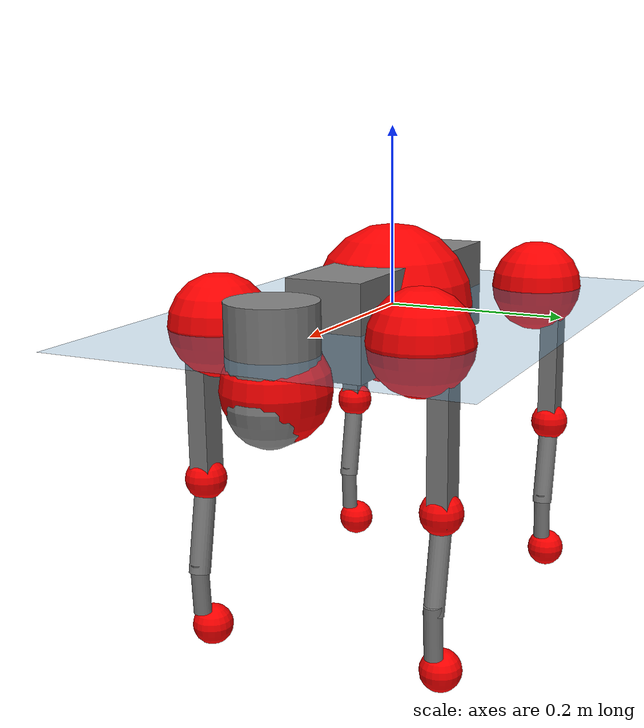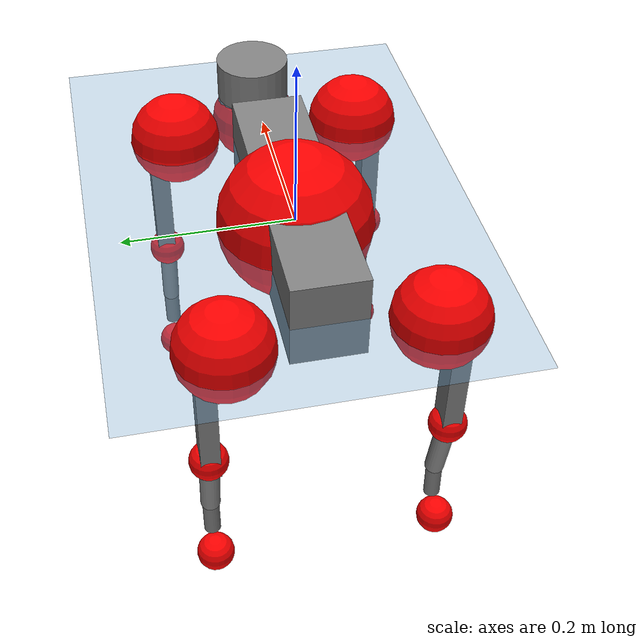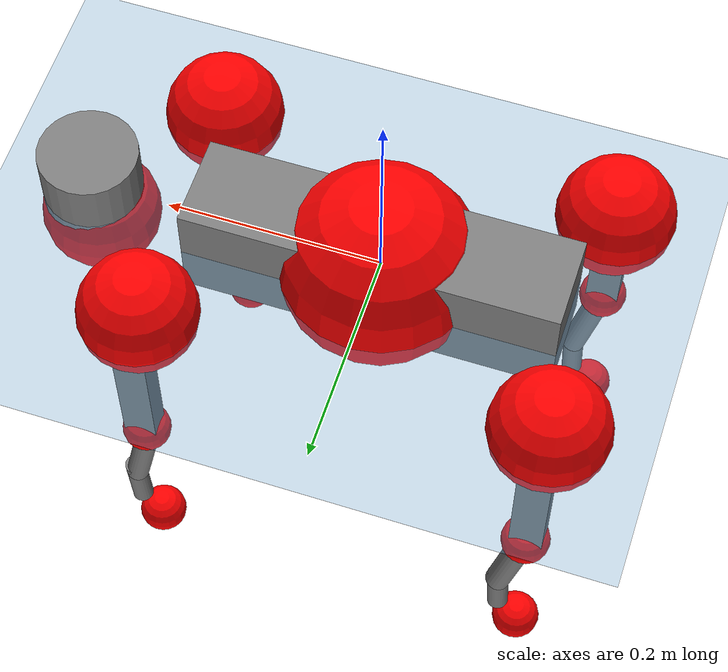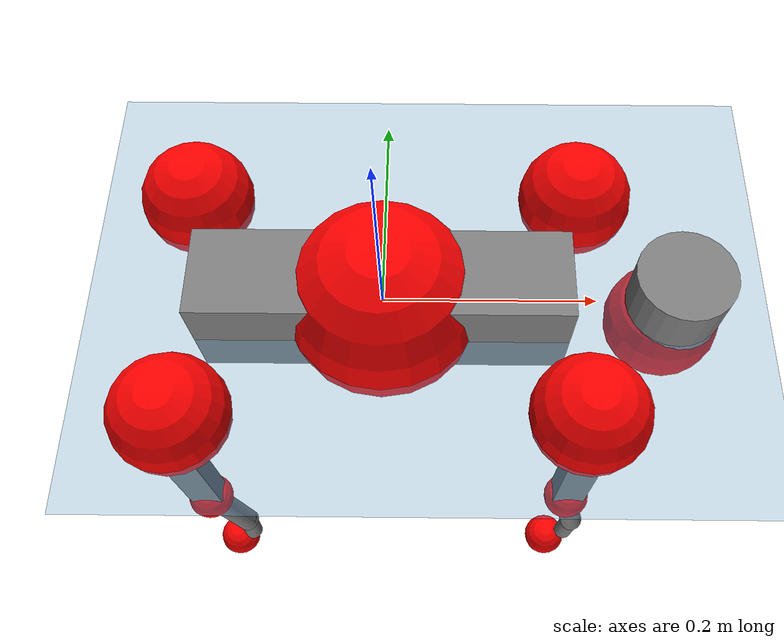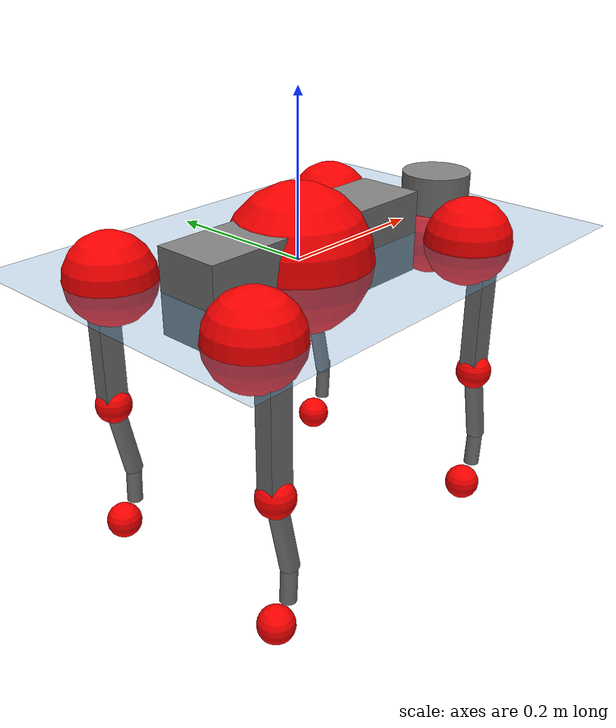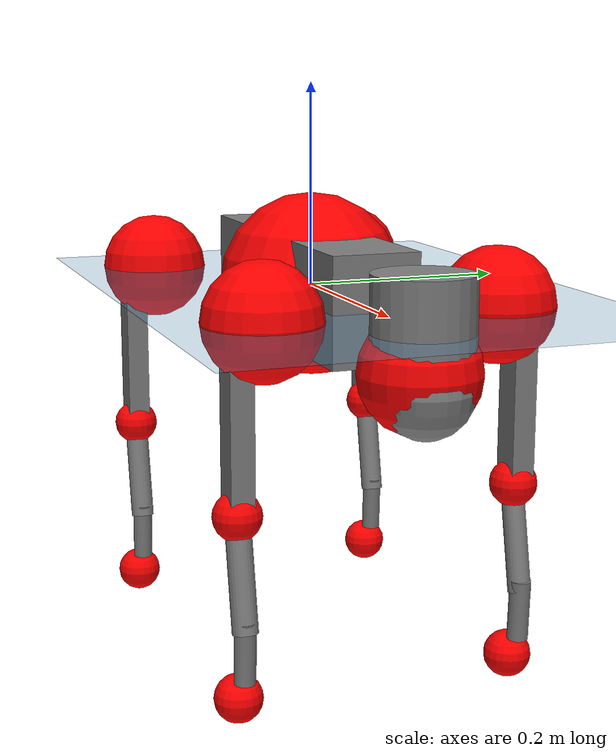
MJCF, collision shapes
<mujoco model="go2">
  <compiler angle="radian" assetdir="assets" balanceinertia="true" inertiafromgeom="false"/>

  <option timestep="0.005" density="1.2" viscosity="2e-05"/>

  <size nkey="1"/>

  <visual>
    <quality shadowsize="8192"/>
    <map shadowclip="0.5"/>
  </visual>

  <default>
    <default class="/">
      <geom contype="0" conaffinity="0" group="1" solref="-1000 -80"/>
      <site size="0.01 0.005 0.005" group="5"/>
      <general forcelimited="true" biastype="affine" gainprm="20" biasprm="0 -20 -0.5"/>
      <default class="go2">
        <joint armature="0.01" damping="0.01" frictionloss="0.2"/>
        <geom condim="1" margin="0.001"/>
        <default class="visual">
          <geom type="mesh" group="2"/>
        </default>
        <default class="collision">
          <geom group="3"/>
          <default class="foot">
            <geom size="0.022 0 0" condim="6" priority="1" friction="0.8 0.02 0.01" solimp="0.015 1 0.022"/>
          </default>
        </default>
        <default class="reward_collision_sphere">
          <geom group="5" rgba="1 0 0 1"/>
        </default>
      </default>
    </default>
  </default>

  <asset>
    <texture type="skybox" colorspace="auto" name="//unnamed_texture_0" builtin="gradient" rgb1="0.95 0.95 0.95" rgb2="0.95 0.95 0.95" width="100" height="600"/>
    <texture type="2d" colorspace="auto" name="texplane" builtin="checker" rgb1="0.345 0.575 0.748" rgb2="0.345 0.575 0.748" markrgb="1 1 1" width="512" height="512"/>
    <material name="MatPlane" class="/" texture="texplane" texuniform="true" texrepeat="2 2" specular="0.9"/>
    <material name="metal" class="/" rgba="0.9 0.95 0.95 1"/>
    <material name="black" class="/" rgba="0 0 0 1"/>
    <material name="white" class="/"/>
    <material name="gray" class="/" rgba="0.671705 0.692426 0.77427 1"/>
    <mesh name="base_0" class="/" file="base_0.obj"/>
    <mesh name="base_1" class="/" file="base_1.obj"/>
    <mesh name="base_2" class="/" file="base_2.obj"/>
    <mesh name="base_3" class="/" file="base_3.obj"/>
    <mesh name="base_4" class="/" file="base_4.obj"/>
    <mesh name="hip_0" class="/" file="hip_0.obj"/>
    <mesh name="hip_1" class="/" file="hip_1.obj"/>
    <mesh name="thigh_0" class="/" file="thigh_0.obj"/>
    <mesh name="thigh_1" class="/" file="thigh_1.obj"/>
    <mesh name="thigh_mirror_0" class="/" file="thigh_mirror_0.obj"/>
    <mesh name="thigh_mirror_1" class="/" file="thigh_mirror_1.obj"/>
    <mesh name="calf_0" class="/" file="calf_0.obj"/>
    <mesh name="calf_1" class="/" file="calf_1.obj"/>
    <mesh name="calf_mirror_0" class="/" file="calf_mirror_0.obj"/>
    <mesh name="calf_mirror_1" class="/" file="calf_mirror_1.obj"/>
    <mesh name="foot" class="/" file="foot.obj"/>
  </asset>

  <worldbody>
    <geom name="floor" class="/" size="100 100 0.125" type="plane" group="0" material="MatPlane"/>
    <light name="toplight_shadow" class="/" pos="0 0 5" dir="0.0990148 0.0990148 -0.990148" type="directional" ambient="0.04 0.04 0.04" diffuse="0.55 0.55 0.55" specular="0.12 0.12 0.12"/>
    <light name="toplight_fill" class="/" pos="0 0 5" dir="0.0990148 0.0990148 -0.990148" type="directional" castshadow="false" ambient="0.04 0.04 0.04" diffuse="0.3 0.3 0.3" specular="0.08 0.08 0.08"/>
    <body name="trunk" childclass="go2" pos="4.75923e-05 0.000129486 0.000635206" quat="1 -9.70082e-05 7.67135e-05 4.65102e-05">
      <inertial pos="0.0203166 -0.000287067 -0.0052907" quat="-0.00042192 0.714352 -0.000156723 0.699787" mass="5.25872" diaginertia="0.0858177 0.0871837 0.00884599"/>
      <joint name="//unnamed_joint_0" type="free" armature="0" damping="0" frictionloss="0"/>
      <geom name="//unnamed_geom_1" class="visual" material="black" mesh="base_0"/>
      <geom name="//unnamed_geom_2" class="visual" material="black" mesh="base_1"/>
      <geom name="//unnamed_geom_3" class="visual" material="black" mesh="base_2"/>
      <geom name="//unnamed_geom_4" class="visual" material="white" mesh="base_3"/>
      <geom name="//unnamed_geom_5" class="visual" material="gray" mesh="base_4"/>
      <geom name="trunk_1" class="collision" size="0.172499 0.0428725 0.0522723" type="box"/>
      <geom name="trunk_2" class="collision" size="0.0458529 0.0412676" pos="0.273164 0 0.00816106" type="cylinder"/>
      <geom name="trunk_3" class="collision" size="0.0431017" pos="0.280831 0 -0.0489664"/>
      <geom name="//unnamed_geom_9" class="reward_collision_sphere" size="0.0917058"/>
      <geom name="//unnamed_geom_10" class="reward_collision_sphere" size="0.0550235" pos="0.268371 0 -0.0367248"/>
      <site name="imu" pos="-0.0306479 -0.00224443 0.0363822" size="0.00917058"/>
      <camera name="track" pos="0 -1.9532 0" quat="0.707107 0.707107 0 0" mode="trackcom"/>
      <camera name="ego_camera" pos="0.299042 0 0.0367248" quat="-0.5 -0.5 0.5 0.5"/>
      <body name="FL_hip" pos="0.185777 0.0455813 0.00212078" quat="1 -2.34884e-05 0.000125167 -0.000184121">
        <inertial pos="-0.00456072 0.00280499 -7.16082e-05" quat="0.495809 0.499158 0.503106 0.501895" mass="0.521048" diaginertia="0.000711086 0.000530512 0.000173834"/>
        <joint name="FL_hip_joint" pos="0 0 0" axis="0.999987 0.000286279 0.00506141" range="-1.04814 1.03004" armature="0.00958374" damping="0.00139358" frictionloss="0.178814"/>
        <geom name="//unnamed_geom_11" class="visual" material="metal" mesh="hip_0"/>
        <geom name="//unnamed_geom_12" class="visual" material="gray" mesh="hip_1"/>
        <geom name="//unnamed_geom_13" class="collision" size="0.0421847 0.0183412" pos="0 0.0781281 0" quat="0.707107 0.707107 0 0" type="cylinder"/>
        <geom name="//unnamed_geom_14" class="reward_collision_sphere" size="0.0550235" pos="0 0.0683621 0"/>
        <body name="FL_thigh" pos="-0.000244046 0.0925655 0.00181444" quat="1 5.15189e-05 0.000153799 0.000109186">
          <inertial pos="-0.00463696 -0.021781 -0.0260807" quat="0.829541 0.0848133 -0.0198952 0.551609" mass="0.876504" diaginertia="0.00476407 0.00517965 0.000315291"/>
          <joint name="FL_thigh_joint" pos="0 0 0" axis="2.58089e-06 1 -1.16317e-06" stiffness="0.000960022" range="-1.57317 3.49569" armature="0.0093927" damping="0.00851349" frictionloss="0.1799"/>
          <geom name="//unnamed_geom_15" class="visual" material="metal" mesh="thigh_0"/>
          <geom name="//unnamed_geom_16" class="visual" material="gray" mesh="thigh_1"/>
          <geom name="//unnamed_geom_17" class="collision" size="0.0976667 0.011234 0.01559" pos="0 0 -0.0869153" quat="0.707107 0 0.707107 0" type="box"/>
          <body name="FL_calf" pos="-0.00106782 -0.00117941 -0.175" quat="1 -1.37836e-05 -0.000151523 -4.90971e-05">
            <inertial pos="0.00593597 -0.000385998 -0.114856" quat="0.71115 0.00137422 -0.00489778 0.703022" mass="0.189093" diaginertia="0.00122048 0.00130064 1.937e-05"/>
            <joint name="FL_calf_joint" pos="0 0 0" axis="-0.00685764 0.999967 0.00433882" stiffness="0.00282526" range="-2.70921 -0.850008" armature="0.0086923" damping="0.00167313" frictionloss="0.17598"/>
            <geom name="//unnamed_geom_18" class="visual" material="gray" mesh="calf_0"/>
            <geom name="//unnamed_geom_19" class="visual" material="black" mesh="calf_1"/>
            <geom name="FL_calf0" class="collision" size="0.0110047 0.0550235" pos="0.00766775 0 -0.0489664" quat="0.994493 0 -0.104807 0" type="cylinder"/>
            <geom name="//unnamed_geom_21" class="collision" size="0.0100876 0.0298044" pos="0.0191694 0 -0.120784" quat="0.999688 0 0.0249974 0" type="cylinder"/>
            <geom name="//unnamed_geom_22" class="visual" pos="0 0 -0.173831" quat="1 0 0 0" material="black" mesh="foot"/>
            <geom name="FL_foot" class="foot" size="0.0178217" pos="-0.00191694 0 -0.173831"/>
            <geom name="//unnamed_geom_24" class="reward_collision_sphere" size="0.0229265"/>
            <geom name="//unnamed_geom_25" class="reward_collision_sphere" size="0.0229265" pos="-0.00191694 0 -0.173831"/>
            <site name="FL_foot" class="foot" pos="-0.00191694 0 -0.173831" size="0.00917058"/>
          </body>
        </body>
      </body>
      <body name="FR_hip" pos="0.186757 -0.0448075 0.000264501" quat="1 5.71869e-06 -6.38656e-06 2.23247e-05">
        <inertial pos="-0.00467656 -0.00196013 -0.000343772" quat="0.498634 0.505352 0.499268 0.496705" mass="0.515957" diaginertia="0.000714709 0.000517706 0.000172155"/>
        <joint name="FR_hip_joint" pos="0 0 0" axis="0.999994 0.00308262 -0.00149757" stiffness="0.00202408" range="-1.05933 1.05846" armature="0.00904831" damping="0.0160682" frictionloss="0.17967"/>
        <geom name="//unnamed_geom_26" class="visual" pos="0 1.39817e-09 5.99703e-08" quat="4.63268e-05 1 0 0" material="metal" mesh="hip_0"/>
        <geom name="//unnamed_geom_27" class="visual" pos="0 2.2666e-09 -1.48329e-07" quat="4.63268e-05 1 0 0" material="gray" mesh="hip_1"/>
        <geom name="//unnamed_geom_28" class="collision" size="0.0421847 0.0183412" pos="0 -0.0781281 0" quat="0.707107 0.707107 0 0" type="cylinder"/>
        <geom name="//unnamed_geom_29" class="reward_collision_sphere" size="0.0550235" pos="0 -0.0683621 0"/>
        <body name="FR_thigh" pos="0.00120844 -0.09234 0.000845972" quat="1 -0.00015349 0.000189095 -0.000189047">
          <inertial pos="-0.00357399 0.022352 -0.0266667" quat="0.551535 -0.0210141 0.0854182 0.829501" mass="0.883099" diaginertia="0.00483796 0.0051572 0.000315943"/>
          <joint name="FR_thigh_joint" pos="0 0 0" axis="-0.00056102 -0.999998 -0.00174946" range="-3.46842 1.5565" armature="0.00917428" damping="0.00804281" frictionloss="0.197935"/>
          <geom name="//unnamed_geom_30" class="visual" material="metal" mesh="thigh_mirror_0"/>
          <geom name="//unnamed_geom_31" class="visual" material="gray" mesh="thigh_mirror_1"/>
          <geom name="//unnamed_geom_32" class="collision" size="0.0976667 0.011234 0.01559" pos="0 0 -0.0869153" quat="0.707107 0 0.707107 0" type="box"/>
          <body name="FR_calf" pos="0.000305201 -0.00105628 -0.173827" quat="1 1.92148e-05 -5.78264e-05 -8.7355e-05">
            <inertial pos="0.00584769 0.00106948 -0.115024" quat="0.702632 -0.00604628 -0.00262998 0.711522" mass="0.184879" diaginertia="0.00118776 0.00130163 1.91588e-05"/>
            <joint name="FR_calf_joint" pos="0 0 0" axis="0.00168912 -0.999998 -0.000783228" range="0.854147 2.70808" armature="0.00928435" damping="0.0106517" frictionloss="0.174329"/>
            <geom name="//unnamed_geom_33" class="visual" material="gray" mesh="calf_mirror_0"/>
            <geom name="//unnamed_geom_34" class="visual" material="black" mesh="calf_mirror_1"/>
            <geom name="FR_calf0" class="collision" size="0.0119218 0.0550235" pos="0.00958469 0 -0.0489664" quat="0.995004 0 -0.0998334 0" type="cylinder"/>
            <geom name="//unnamed_geom_36" class="collision" size="0.0100876 0.0298044" pos="0.0191694 0 -0.120784" quat="0.999688 0 0.0249974 0" type="cylinder"/>
            <geom name="//unnamed_geom_37" class="visual" pos="0 0 -0.173831" quat="1 0 0 0" material="black" mesh="foot"/>
            <geom name="FR_foot" class="foot" size="0.0202063" pos="-0.00191694 0 -0.173831"/>
            <geom name="//unnamed_geom_39" class="reward_collision_sphere" size="0.0229265"/>
            <geom name="//unnamed_geom_40" class="reward_collision_sphere" size="0.0229265" pos="-0.00191694 0 -0.173831"/>
            <site name="FR_foot" class="foot" pos="-0.00191694 0 -0.173831" size="0.00917058"/>
          </body>
        </body>
      </body>
      <body name="RL_hip" pos="-0.186571 0.0447771 -0.000653405" quat="1 5.46538e-05 6.82208e-05 4.71687e-05">
        <inertial pos="0.00431438 0.00292891 -2.27121e-05" quat="0.506215 0.494711 0.499504 0.499502" mass="0.519292" diaginertia="0.000717345 0.00053541 0.000172641"/>
        <joint name="RL_hip_joint" pos="0 0 0" axis="-0.999788 0.0205223 -0.00139964" stiffness="0.00120209" range="-1.05871 1.01488" armature="0.0089289" damping="0.0141777" frictionloss="0.186249"/>
        <geom name="//unnamed_geom_41" class="visual" pos="-1.24021e-09 0 -2.43109e-07" quat="4.63268e-05 0 1 0" material="metal" mesh="hip_0"/>
        <geom name="//unnamed_geom_42" class="visual" pos="-2.01052e-09 0 -2.15603e-07" quat="4.63268e-05 0 1 0" material="gray" mesh="hip_1"/>
        <geom name="//unnamed_geom_43" class="collision" size="0.0421847 0.0183412" pos="0 0.0781281 0" quat="0.707107 0.707107 0 0" type="cylinder"/>
        <geom name="//unnamed_geom_44" class="reward_collision_sphere" size="0.0550235" pos="0 0.0683621 0"/>
        <body name="RL_thigh" pos="0.000819955 0.0915169 -0.000705273" quat="1 1.57998e-05 -5.12398e-05 -2.26577e-05">
          <inertial pos="-0.00335723 -0.0216233 -0.0271358" quat="0.829493 0.0848015 -0.0203416 0.551667" mass="0.889094" diaginertia="0.00481141 0.00525159 0.000317918"/>
          <joint name="RL_thigh_joint" pos="0 0 0" axis="-0.0037414 0.999992 -0.00108939" range="-0.521626 4.53109" armature="0.00959641" damping="0.0108334" frictionloss="0.179201"/>
          <geom name="//unnamed_geom_45" class="visual" material="metal" mesh="thigh_0"/>
          <geom name="//unnamed_geom_46" class="visual" material="gray" mesh="thigh_1"/>
          <geom name="//unnamed_geom_47" class="collision" size="0.0976667 0.011234 0.01559" pos="0 0 -0.0869153" quat="0.707107 0 0.707107 0" type="box"/>
          <body name="RL_calf" pos="0.00117096 0.000560984 -0.173306" quat="1 0.000123579 0.000363101 0.000116009">
            <inertial pos="0.00592461 -0.000567374 -0.115136" quat="0.705715 -0.000838412 -0.0061205 0.708469" mass="0.186549" diaginertia="0.00120478 0.00130846 1.89725e-05"/>
            <joint name="RL_calf_joint" pos="0 0 0" axis="-0.0103155 0.999926 -0.006458" stiffness="0.00163876" range="-2.71997 -0.837604" armature="0.00931106" damping="0.00338405" frictionloss="0.176543"/>
            <geom name="//unnamed_geom_48" class="visual" material="gray" mesh="calf_0"/>
            <geom name="//unnamed_geom_49" class="visual" material="black" mesh="calf_1"/>
            <geom name="RL_calf0" class="collision" size="0.0119218 0.0550235" pos="0.00958469 0 -0.0489664" quat="0.995004 0 -0.0998334 0" type="cylinder"/>
            <geom name="//unnamed_geom_51" class="collision" size="0.0100876 0.0298044" pos="0.0191694 0 -0.120784" quat="0.999688 0 0.0249974 0" type="cylinder"/>
            <geom name="//unnamed_geom_52" class="visual" pos="0 0 -0.173831" quat="1 0 0 0" material="black" mesh="foot"/>
            <geom name="RL_foot" class="foot" size="0.0183395" pos="-0.00191694 0 -0.173831"/>
            <geom name="//unnamed_geom_54" class="reward_collision_sphere" size="0.0229265"/>
            <geom name="//unnamed_geom_55" class="reward_collision_sphere" size="0.0229265" pos="-0.00191694 0 -0.173831"/>
            <site name="RL_foot" class="foot" pos="-0.00191694 0 -0.173831" size="0.00917058"/>
          </body>
        </body>
      </body>
      <body name="RR_hip" pos="-0.185351 -0.0470187 -0.00155964" quat="1 -6.01746e-05 -4.64267e-06 -1.79541e-05">
        <inertial pos="0.00436605 -0.00181419 0.000229186" quat="0.499203 0.497237 0.498244 0.505277" mass="0.5286" diaginertia="0.00072506 0.000535988 0.000173536"/>
        <joint name="RR_hip_joint" pos="0 0 0" axis="-1 -0.000679954 -0.000489933" stiffness="0.00235382" range="-1.04797 1.07137" armature="0.00912711" damping="0.0052469" frictionloss="0.183254"/>
        <geom name="//unnamed_geom_56" class="visual" pos="1.24083e-09 1.39817e-09 -3.03079e-07" quat="2.14617e-09 4.63268e-05 4.63268e-05 -1" material="metal" mesh="hip_0"/>
        <geom name="//unnamed_geom_57" class="visual" pos="2.00897e-09 2.2666e-09 -6.72734e-08" quat="2.14617e-09 4.63268e-05 4.63268e-05 -1" material="gray" mesh="hip_1"/>
        <geom name="//unnamed_geom_58" class="collision" size="0.0421847 0.0183412" pos="0 -0.0781281 0" quat="0.707107 0.707107 0 0" type="cylinder"/>
        <geom name="//unnamed_geom_59" class="reward_collision_sphere" size="0.0550235" pos="0 -0.0683621 0"/>
        <body name="RR_thigh" pos="0.00055345 -0.0929535 -0.000368723" quat="1 2.40163e-06 0.000228245 8.52244e-05">
          <inertial pos="-0.00405203 0.021521 -0.0262343" quat="0.551584 -0.020104 0.0847362 0.829561" mass="0.86119" diaginertia="0.00471748 0.00507844 0.000314025"/>
          <joint name="RR_thigh_joint" pos="0 0 0" axis="0.00486093 -0.999974 0.00540184" range="-4.54429 0.522679" armature="0.00948382" damping="0.0189937" frictionloss="0.184703"/>
          <geom name="//unnamed_geom_60" class="visual" material="metal" mesh="thigh_mirror_0"/>
          <geom name="//unnamed_geom_61" class="visual" material="gray" mesh="thigh_mirror_1"/>
          <geom name="//unnamed_geom_62" class="collision" size="0.0976667 0.011234 0.01559" pos="0 0 -0.0869153" quat="0.707107 0 0.707107 0" type="box"/>
          <body name="RR_calf" pos="0.000107981 -0.000837728 -0.174881" quat="1 -0.000281256 -0.000395443 -0.000252184">
            <inertial pos="0.006561 0.000748862 -0.115923" quat="0.703554 -0.00481724 0.00122891 0.710624" mass="0.186703" diaginertia="0.0012183 0.00129881 1.91436e-05"/>
            <joint name="RR_calf_joint" pos="0 0 0" axis="0.00357471 -0.999994 -9.30351e-05" range="0.82677 2.72827" armature="0.00870588" damping="0.00604244" frictionloss="0.182843"/>
            <geom name="//unnamed_geom_63" class="visual" material="gray" mesh="calf_mirror_0"/>
            <geom name="//unnamed_geom_64" class="visual" material="black" mesh="calf_mirror_1"/>
            <geom name="RR_calf0" class="collision" size="0.0119218 0.0550235" pos="0.00958469 0 -0.0489664" quat="0.995004 0 -0.0998334 0" type="cylinder"/>
            <geom name="//unnamed_geom_66" class="collision" size="0.0100876 0.0298044" pos="0.0191694 0 -0.120784" quat="0.999688 0 0.0249974 0" type="cylinder"/>
            <geom name="//unnamed_geom_67" class="visual" pos="0 0 -0.173831" quat="1 0 0 0" material="black" mesh="foot"/>
            <geom name="RR_foot" class="foot" size="0.0219771" pos="-0.00191694 0 -0.173831"/>
            <geom name="//unnamed_geom_69" class="reward_collision_sphere" size="0.0229265"/>
            <geom name="//unnamed_geom_70" class="reward_collision_sphere" size="0.0229265" pos="-0.00191694 0 -0.173831"/>
            <site name="RR_foot" class="foot" pos="-0.00191694 0 -0.173831" size="0.00917058"/>
          </body>
        </body>
      </body>
    </body>
  </worldbody>

  <contact>
    <pair class="/" geom1="floor" geom2="FL_foot" name="//unnamed_contact_0"/>
    <pair class="/" geom1="floor" geom2="FR_foot" name="//unnamed_contact_1"/>
    <pair class="/" geom1="floor" geom2="RL_foot" name="//unnamed_contact_2"/>
    <pair class="/" geom1="floor" geom2="RR_foot" name="//unnamed_contact_3"/>
  </contact>

  <actuator>
    <general name="FL_hip" class="/" joint="FL_hip_joint" forcerange="-21.2921 21.2921" gainprm="18.5873" biasprm="0 -18.5873 -0.461288"/>
    <general name="FL_thigh" class="/" joint="FL_thigh_joint" forcerange="-22.5351 22.5351" gainprm="18.5873" biasprm="0 -18.5873 -0.461288"/>
    <general name="FL_calf" class="/" joint="FL_calf_joint" forcerange="-41.124 41.124" gainprm="18.5873" biasprm="0 -18.5873 -0.461288"/>
    <general name="FR_hip" class="/" joint="FR_hip_joint" forcerange="-22.4012 22.4012" gainprm="18.5873" biasprm="0 -18.5873 -0.461288"/>
    <general name="FR_thigh" class="/" joint="FR_thigh_joint" forcerange="-20.9568 20.9568" gainprm="18.5873" biasprm="0 -18.5873 -0.461288"/>
    <general name="FR_calf" class="/" joint="FR_calf_joint" forcerange="-41.0263 41.0263" gainprm="18.5873" biasprm="0 -18.5873 -0.461288"/>
    <general name="RL_hip" class="/" joint="RL_hip_joint" forcerange="-21.724 21.724" gainprm="18.5873" biasprm="0 -18.5873 -0.461288"/>
    <general name="RL_thigh" class="/" joint="RL_thigh_joint" forcerange="-21.432 21.432" gainprm="18.5873" biasprm="0 -18.5873 -0.461288"/>
    <general name="RL_calf" class="/" joint="RL_calf_joint" forcerange="-41.0684 41.0684" gainprm="18.5873" biasprm="0 -18.5873 -0.461288"/>
    <general name="RR_hip" class="/" joint="RR_hip_joint" forcerange="-22.0973 22.0973" gainprm="18.5873" biasprm="0 -18.5873 -0.461288"/>
    <general name="RR_thigh" class="/" joint="RR_thigh_joint" forcerange="-20.9262 20.9262" gainprm="18.5873" biasprm="0 -18.5873 -0.461288"/>
    <general name="RR_calf" class="/" joint="RR_calf_joint" forcerange="-42.2152 42.2152" gainprm="18.5873" biasprm="0 -18.5873 -0.461288"/>
  </actuator>

  <sensor>
    <gyro site="imu" name="imu_angular_velocity"/>
    <velocimeter site="imu" name="imu_linear_velocity"/>
    <framelinvel objtype="site" objname="FL_foot" name="FL_foot_global_linear_velocity"/>
    <framelinvel objtype="site" objname="FR_foot" name="FR_foot_global_linear_velocity"/>
    <framelinvel objtype="site" objname="RL_foot" name="RL_foot_global_linear_velocity"/>
    <framelinvel objtype="site" objname="RR_foot" name="RR_foot_global_linear_velocity"/>
  </sensor>

  <keyframe>
    <key name="home" qpos="0 0 0.325 1 0 0 0 0.1 0.8 -1.5 -0.1 -0.8 1.5 -0.1 0.8 -1.5 0.1 -0.8 1.5"/>
  </keyframe>
</mujoco>
